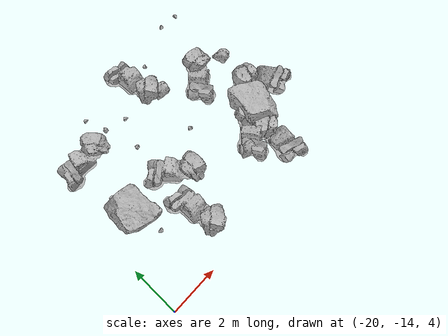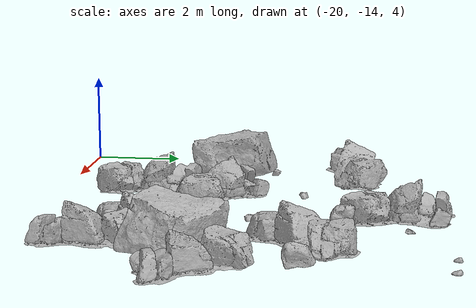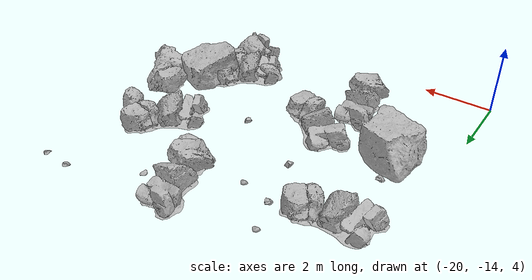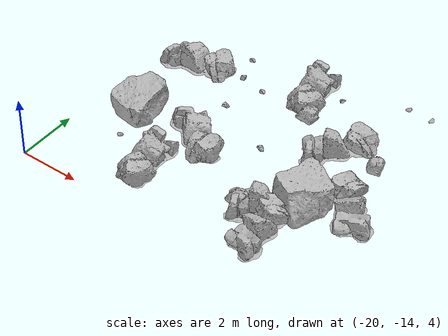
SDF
<sdf version="1.7">
 <world name="marsyard">
  <model name="Rock_23">
   <static>true</static>
   <pose>-12.9119 -11.3638 4.0000 0.0000 0.0000 -2.2893</pose>
   <link name="link">
    <visual name="visual">
     <geometry><mesh><uri>package://rock_generator/rocks_ws/rock_2/meshes/rock_2.stl</uri></mesh></geometry>
    </visual>
    <collision name="collision">
     <geometry><mesh><uri>package://rock_generator/rocks_ws/rock_2/meshes/rock_2.stl</uri></mesh></geometry>
    </collision>
   </link>
  </model>
  <model name="Rock_25">
   <static>true</static>
   <pose>-11.9536 -5.3025 4.0000 0.0000 0.0000 -2.9513</pose>
   <link name="link">
    <visual name="visual">
     <geometry><mesh><uri>package://rock_generator/rocks_ws/rock_7/meshes/rock_7.stl</uri></mesh></geometry>
    </visual>
    <collision name="collision">
     <geometry><mesh><uri>package://rock_generator/rocks_ws/rock_7/meshes/rock_7.stl</uri></mesh></geometry>
    </collision>
   </link>
  </model>
  <model name="Rock_36">
   <static>true</static>
   <pose>-14.2222 -7.5461 4.0000 0.0000 0.0000 0.9857</pose>
   <link name="link">
    <visual name="visual">
     <geometry><mesh><uri>package://rock_generator/rocks_ws/rock_3/meshes/rock_3.stl</uri></mesh></geometry>
    </visual>
    <collision name="collision">
     <geometry><mesh><uri>package://rock_generator/rocks_ws/rock_3/meshes/rock_3.stl</uri></mesh></geometry>
    </collision>
   </link>
  </model>
  <model name="Rock_44">
   <static>true</static>
   <pose>-18.3952 -7.5008 4.0000 0.0000 0.0000 -2.9468</pose>
   <link name="link">
    <visual name="visual">
     <geometry><mesh><uri>package://rock_generator/rocks_ws/rock_2/meshes/rock_2.stl</uri></mesh></geometry>
    </visual>
    <collision name="collision">
     <geometry><mesh><uri>package://rock_generator/rocks_ws/rock_2/meshes/rock_2.stl</uri></mesh></geometry>
    </collision>
   </link>
  </model>
  <model name="Rock_50">
   <static>true</static>
   <pose>-16.2427 -10.4047 4.0000 0.0000 0.0000 2.5466</pose>
   <link name="link">
    <visual name="visual">
     <geometry><mesh><uri>package://rock_generator/rocks_ws/rock_2/meshes/rock_2.stl</uri></mesh></geometry>
    </visual>
    <collision name="collision">
     <geometry><mesh><uri>package://rock_generator/rocks_ws/rock_2/meshes/rock_2.stl</uri></mesh></geometry>
    </collision>
   </link>
  </model>
  <model name="Rock_124">
   <static>true</static>
   <pose>-16.5970 -8.5785 4.0000 0.0000 0.0000 -1.3797</pose>
   <link name="link">
    <visual name="visual">
     <geometry><mesh><uri>package://rock_generator/rocks_ws/rock_9/meshes/rock_9.stl</uri></mesh></geometry>
    </visual>
    <collision name="collision">
     <geometry><mesh><uri>package://rock_generator/rocks_ws/rock_9/meshes/rock_9.stl</uri></mesh></geometry>
    </collision>
   </link>
  </model>
  <model name="Rock_139">
   <static>true</static>
   <pose>-17.2862 -6.2772 4.0000 0.0000 0.0000 -0.4546</pose>
   <link name="link">
    <visual name="visual">
     <geometry><mesh><uri>package://rock_generator/rocks_ws/rock_7/meshes/rock_7.stl</uri></mesh></geometry>
    </visual>
    <collision name="collision">
     <geometry><mesh><uri>package://rock_generator/rocks_ws/rock_7/meshes/rock_7.stl</uri></mesh></geometry>
    </collision>
   </link>
  </model>
  <model name="Rock_141">
   <static>true</static>
   <pose>-18.2878 -11.6133 4.0000 0.0000 0.0000 2.7403</pose>
   <link name="link">
    <visual name="visual">
     <geometry><mesh><uri>package://rock_generator/rocks_ws/rock_7/meshes/rock_7.stl</uri></mesh></geometry>
    </visual>
    <collision name="collision">
     <geometry><mesh><uri>package://rock_generator/rocks_ws/rock_7/meshes/rock_7.stl</uri></mesh></geometry>
    </collision>
   </link>
  </model>
  <model name="Rock_152">
   <static>true</static>
   <pose>-16.8182 -12.1159 4.0000 0.0000 0.0000 1.7944</pose>
   <link name="link">
    <visual name="visual">
     <geometry><mesh><uri>package://rock_generator/rocks_ws/rock_2/meshes/rock_2.stl</uri></mesh></geometry>
    </visual>
    <collision name="collision">
     <geometry><mesh><uri>package://rock_generator/rocks_ws/rock_2/meshes/rock_2.stl</uri></mesh></geometry>
    </collision>
   </link>
  </model>
  <model name="Rock_182">
   <static>true</static>
   <pose>-13.8462 -6.2045 4.0000 0.0000 0.0000 0.7127</pose>
   <link name="link">
    <visual name="visual">
     <geometry><mesh><uri>package://rock_generator/rocks_ws/rock_7/meshes/rock_7.stl</uri></mesh></geometry>
    </visual>
    <collision name="collision">
     <geometry><mesh><uri>package://rock_generator/rocks_ws/rock_7/meshes/rock_7.stl</uri></mesh></geometry>
    </collision>
   </link>
  </model>
  <model name="Rock_226">
   <static>true</static>
   <pose>-12.4284 -12.2958 4.0000 0.0000 0.0000 -1.5491</pose>
   <link name="link">
    <visual name="visual">
     <geometry><mesh><uri>package://rock_generator/rocks_ws/rock_2/meshes/rock_2.stl</uri></mesh></geometry>
    </visual>
    <collision name="collision">
     <geometry><mesh><uri>package://rock_generator/rocks_ws/rock_2/meshes/rock_2.stl</uri></mesh></geometry>
    </collision>
   </link>
  </model>
  <model name="Rock_235">
   <static>true</static>
   <pose>-13.6749 -11.8086 4.0000 0.0000 0.0000 0.8652</pose>
   <link name="link">
    <visual name="visual">
     <geometry><mesh><uri>package://rock_generator/rocks_ws/rock_3/meshes/rock_3.stl</uri></mesh></geometry>
    </visual>
    <collision name="collision">
     <geometry><mesh><uri>package://rock_generator/rocks_ws/rock_3/meshes/rock_3.stl</uri></mesh></geometry>
    </collision>
   </link>
  </model>
  <model name="Rock_242">
   <static>true</static>
   <pose>-14.5353 -9.5344 4.0000 0.0000 0.0000 -2.0367</pose>
   <link name="link">
    <visual name="visual">
     <geometry><mesh><uri>package://rock_generator/rocks_ws/rock_9/meshes/rock_9.stl</uri></mesh></geometry>
    </visual>
    <collision name="collision">
     <geometry><mesh><uri>package://rock_generator/rocks_ws/rock_9/meshes/rock_9.stl</uri></mesh></geometry>
    </collision>
   </link>
  </model>
  <model name="Rock_268">
   <static>true</static>
   <pose>-11.2389 -8.1952 4.0000 0.0000 0.0000 -0.2845</pose>
   <link name="link">
    <visual name="visual">
     <geometry><mesh><uri>package://rock_generator/rocks_ws/rock_3/meshes/rock_3.stl</uri></mesh></geometry>
    </visual>
    <collision name="collision">
     <geometry><mesh><uri>package://rock_generator/rocks_ws/rock_3/meshes/rock_3.stl</uri></mesh></geometry>
    </collision>
   </link>
  </model>
  <model name="Rock_348">
   <static>true</static>
   <pose>-12.2358 -10.6557 4.0000 0.0000 0.0000 0.3439</pose>
   <link name="link">
    <visual name="visual">
     <geometry><mesh><uri>package://rock_generator/rocks_ws/rock_1/meshes/rock_1.stl</uri></mesh></geometry>
    </visual>
    <collision name="collision">
     <geometry><mesh><uri>package://rock_generator/rocks_ws/rock_1/meshes/rock_1.stl</uri></mesh></geometry>
    </collision>
   </link>
  </model>
  <model name="Rock_373">
   <static>true</static>
   <pose>-16.9815 -7.1458 4.0000 0.0000 0.0000 2.2627</pose>
   <link name="link">
    <visual name="visual">
     <geometry><mesh><uri>package://rock_generator/rocks_ws/rock_9/meshes/rock_9.stl</uri></mesh></geometry>
    </visual>
    <collision name="collision">
     <geometry><mesh><uri>package://rock_generator/rocks_ws/rock_9/meshes/rock_9.stl</uri></mesh></geometry>
    </collision>
   </link>
  </model>
  <model name="Rock_376">
   <static>true</static>
   <pose>-18.3905 -10.4095 4.0000 0.0000 0.0000 -2.5355</pose>
   <link name="link">
    <visual name="visual">
     <geometry><mesh><uri>package://rock_generator/rocks_ws/rock_1/meshes/rock_1.stl</uri></mesh></geometry>
    </visual>
    <collision name="collision">
     <geometry><mesh><uri>package://rock_generator/rocks_ws/rock_1/meshes/rock_1.stl</uri></mesh></geometry>
    </collision>
   </link>
  </model>
  <model name="Rock_396">
   <static>true</static>
   <pose>-14.7283 -6.5197 4.0000 0.0000 0.0000 1.8276</pose>
   <link name="link">
    <visual name="visual">
     <geometry><mesh><uri>package://rock_generator/rocks_ws/rock_2/meshes/rock_2.stl</uri></mesh></geometry>
    </visual>
    <collision name="collision">
     <geometry><mesh><uri>package://rock_generator/rocks_ws/rock_2/meshes/rock_2.stl</uri></mesh></geometry>
    </collision>
   </link>
  </model>
  <model name="Rock_405">
   <static>true</static>
   <pose>-12.5934 -8.1609 4.0000 0.0000 0.0000 -2.2454</pose>
   <link name="link">
    <visual name="visual">
     <geometry><mesh><uri>package://rock_generator/rocks_ws/rock_2/meshes/rock_2.stl</uri></mesh></geometry>
    </visual>
    <collision name="collision">
     <geometry><mesh><uri>package://rock_generator/rocks_ws/rock_2/meshes/rock_2.stl</uri></mesh></geometry>
    </collision>
   </link>
  </model>
  <model name="Rock_438">
   <static>true</static>
   <pose>-16.0934 -7.3594 4.0000 0.0000 0.0000 -0.5842</pose>
   <link name="link">
    <visual name="visual">
     <geometry><mesh><uri>package://rock_generator/rocks_ws/rock_7/meshes/rock_7.stl</uri></mesh></geometry>
    </visual>
    <collision name="collision">
     <geometry><mesh><uri>package://rock_generator/rocks_ws/rock_7/meshes/rock_7.stl</uri></mesh></geometry>
    </collision>
   </link>
  </model>
  <model name="Rock_478">
   <static>true</static>
   <pose>-11.1258 -5.3296 4.0000 0.0000 0.0000 -2.1538</pose>
   <link name="link">
    <visual name="visual">
     <geometry><mesh><uri>package://rock_generator/rocks_ws/rock_7/meshes/rock_7.stl</uri></mesh></geometry>
    </visual>
    <collision name="collision">
     <geometry><mesh><uri>package://rock_generator/rocks_ws/rock_7/meshes/rock_7.stl</uri></mesh></geometry>
    </collision>
   </link>
  </model>
  <model name="Rock_488">
   <static>true</static>
   <pose>-10.9124 -10.1024 4.0000 0.0000 0.0000 -0.8809</pose>
   <link name="link">
    <visual name="visual">
     <geometry><mesh><uri>package://rock_generator/rocks_ws/rock_2/meshes/rock_2.stl</uri></mesh></geometry>
    </visual>
    <collision name="collision">
     <geometry><mesh><uri>package://rock_generator/rocks_ws/rock_2/meshes/rock_2.stl</uri></mesh></geometry>
    </collision>
   </link>
  </model>
  <model name="Rock_489">
   <static>true</static>
   <pose>-18.7471 -9.4035 4.0000 0.0000 0.0000 1.6155</pose>
   <link name="link">
    <visual name="visual">
     <geometry><mesh><uri>package://rock_generator/rocks_ws/rock_9/meshes/rock_9.stl</uri></mesh></geometry>
    </visual>
    <collision name="collision">
     <geometry><mesh><uri>package://rock_generator/rocks_ws/rock_9/meshes/rock_9.stl</uri></mesh></geometry>
    </collision>
   </link>
  </model>
 </world>
</sdf>
